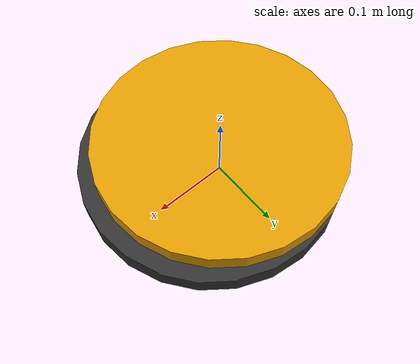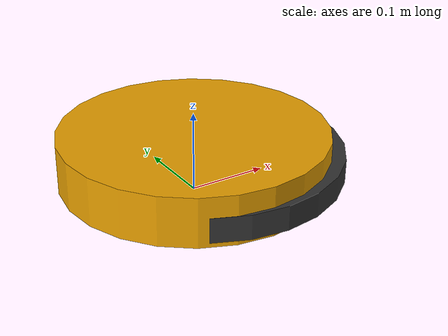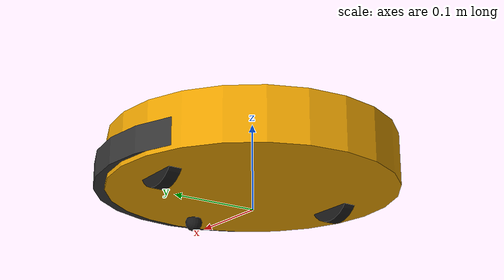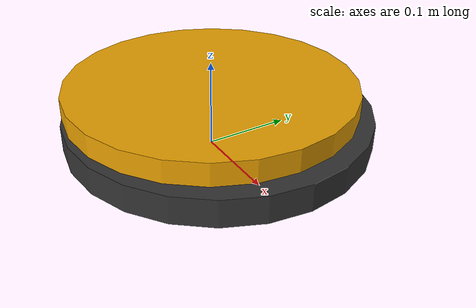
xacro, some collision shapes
<?xml version="1.0" ?>
<robot name="create3" xmlns:xacro="http://ros.org/wiki/xacro">
  <xacro:include filename="$(find nav2_minimal_tb4_description)/urdf/icreate/bumper.urdf.xacro" />
  <xacro:include filename="$(find fleet_orchestrator)/urdf/tb4/icreate/caster.urdf.xacro" />
  <xacro:include filename="$(find fleet_orchestrator)/urdf/tb4/icreate/common_properties.urdf.xacro"/>
  <xacro:include filename="$(find fleet_orchestrator)/urdf/tb4/icreate/sensors/imu.urdf.xacro" />
  <xacro:include filename="$(find nav2_minimal_tb4_description)/urdf/icreate/wheel.urdf.xacro" />

  <!-- Gazebo version -->
  <xacro:arg name="gazebo"                       default="ignition" />

  <!-- Namespace -->
  <xacro:arg name="namespace"                    default=""/>

  <!-- Prefixo de tópico gz-transport por robô (fork) -->
  <xacro:property name="tb_ns"     value="$(arg namespace)"/>
  <xacro:property name="tb_prefix" value="${'/' + tb_ns if tb_ns else ''}"/>

  <!-- Mechanical properties -->
  <xacro:property name="body_z_offset"           value="${-2.5*cm2m}" />
  <xacro:property name="body_collision_z_offset" value="${1*cm2m}" />
  <xacro:property name="body_mass"               value="2.300" />
  <xacro:property name="body_radius"             value="${16.4*cm2m}" />
  <xacro:property name="body_length"             value="${6*cm2m}" />

  <xacro:property name="body_cog_x_offset"       value="${2.28*cm2m}" />

  <xacro:property name="bumper_mass"             value="0.1" />
  <xacro:property name="bumper_offset_z"         value="${-2.5*cm2m}" />
  <xacro:property name="bumper_inertial_x"       value="${8*cm2m}" />
  <xacro:property name="bumper_inertial_z"       value="${2*cm2m}"/>

  <xacro:property name="wheel_height"            value="${-2.75*cm2m}" />
  <xacro:property name="distance_between_wheels" value="${23.3*cm2m}" />

  <xacro:property name="caster_position_x"       value="${12.5*cm2m}" />
  <xacro:property name="caster_position_z"       value="${-5.03*cm2m}" />

  <xacro:property name="wheel_drop_offset_z"     value="${3.5*mm2m}"/>
  <xacro:property name="wheel_drop_z"            value="${wheel_height + wheel_drop_offset_z}"/>

  <xacro:property name="base_link_z_offset"     value="${6.42*cm2m}"/>

  <!-- Create 3 base definition-->
  <link name="base_link">
    <visual>
      <origin xyz="0 0 ${body_z_offset + base_link_z_offset}" rpy="0 0 ${pi/2}"/>
      <geometry>
        <mesh filename="package://nav2_minimal_tb4_description/meshes/body_visual.dae" />
      </geometry>
    </visual>
    <collision name="create3_base_collision">
      <origin xyz="0 0 ${body_z_offset + body_collision_z_offset  + base_link_z_offset}" rpy="0 0 ${pi/2}"/>
      <geometry>
        <cylinder length="${body_length}" radius="${body_radius}"/>
      </geometry>
    </collision>
    <xacro:inertial_cylinder_with_pose mass="${body_mass}" radius="${body_radius}" length="${body_length}">
      <origin xyz="${body_cog_x_offset} 0 ${body_collision_z_offset + base_link_z_offset}"/>
    </xacro:inertial_cylinder_with_pose>
  </link>

  <gazebo reference="base_link">
    <xacro:material_darkgray/>
  </gazebo>

  <!-- Bumper -->
  <xacro:bumper
      gazebo="$(arg gazebo)"
      namespace="$(arg namespace)"
      visual_mesh="package://nav2_minimal_tb4_description/meshes/bumper_visual.dae"
      collision_mesh="package://nav2_minimal_tb4_description/meshes/bumper_collision.dae">
    <origin xyz="0 0 ${bumper_offset_z  + base_link_z_offset}"/>
    <inertial>
      <origin xyz="${bumper_inertial_x} 0 ${bumper_inertial_z}"/>
      <mass value="${bumper_mass}"/>
      <inertia ixx="0.0013483753405" ixy="0.0000000454352" ixz="0.0000014434849"
               iyy="0.0002521736852" iyz="-0.0000000006721" izz="0.0015442525386"/>
    </inertial>
  </xacro:bumper>

  <!-- Wheels with mechanical wheel drop -->
  <xacro:wheel name="left" gazebo="$(arg gazebo)">
    <origin xyz="0 ${distance_between_wheels/2} ${wheel_drop_z  + base_link_z_offset}" rpy="${-pi/2} 0 0"/>
  </xacro:wheel>

  <xacro:wheel name="right" gazebo="$(arg gazebo)">
    <origin xyz="0 ${-distance_between_wheels/2} ${wheel_drop_z  + base_link_z_offset}" rpy="${-pi/2} 0 0"/>
  </xacro:wheel>

  <!-- Caster wheel -->
  <xacro:caster name="front_caster" parent_link="base_link">
    <origin xyz="${caster_position_x} 0 ${caster_position_z  + base_link_z_offset}" rpy="${-pi/2} 0 0"/>
  </xacro:caster>

  <!-- IMU -->
  <xacro:imu_sensor gazebo="$(arg gazebo)" namespace="$(arg namespace)">
    <origin xyz="0.050613 0.043673 ${0.0202 + base_link_z_offset}"/>
  </xacro:imu_sensor>

  <gazebo>
      <plugin
        filename="gz-sim-diff-drive-system"
        name="gz::sim::systems::DiffDrive">
        <left_joint>left_wheel_joint</left_joint>
        <right_joint>right_wheel_joint</right_joint>
        <wheel_separation>0.233</wheel_separation>
        <wheel_radius>0.03575</wheel_radius>
        <max_linear_acceleration>2</max_linear_acceleration>
        <min_linear_acceleration>-2</min_linear_acceleration>
        <max_angular_acceleration>3</max_angular_acceleration>
        <min_angular_acceleration>-3</min_angular_acceleration>
        <max_linear_velocity>0.5</max_linear_velocity>
        <min_linear_velocity>-0.5</min_linear_velocity>
        <max_angular_velocity>2.0</max_angular_velocity>
        <min_angular_velocity>-2.0</min_angular_velocity>
        <topic>${tb_prefix}/cmd_vel</topic>
        <odom_topic>${tb_prefix}/odom</odom_topic>
        <tf_topic>${tb_prefix}/tf</tf_topic>
        <frame_id>odom</frame_id>
        <child_frame_id>base_link</child_frame_id>
        <odom_publish_frequency>30</odom_publish_frequency>
      </plugin>

      <plugin
        filename="gz-sim-joint-state-publisher-system"
        name="gz::sim::systems::JointStatePublisher">
        <joint_name>left_wheel_joint</joint_name>
        <joint_name>right_wheel_joint</joint_name>
        <topic>${tb_prefix}/joint_states</topic>
        <update_rate>30</update_rate>
      </plugin>
  </gazebo>

</robot>

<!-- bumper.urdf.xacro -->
<robot xmlns:xacro="http://ros.org/wiki/xacro">

<!-- The robot has a bumper with 5 contact sensors. The center one is
functional, while the 4 remaining ones are created as dummy links. -->
<xacro:macro name="dummy_bumper_zone" params="name parent_link:=base_link *origin">
  <xacro:property name="link_name" value="${name}"/>
  <xacro:property name="joint_name" value="${name}_joint"/>

  <joint name="${joint_name}" type="fixed">
    <parent link="${parent_link}"/>
    <child link="${link_name}"/>
    <xacro:insert_block name="origin"/>
  </joint>
  <link name="${link_name}"/>
</xacro:macro>

<xacro:macro name="bumper" params="name:=bumper namespace parent_link:=base_link update_rate:=62.0 gazebo visual_mesh collision_mesh
  *origin *inertial">
  <xacro:property name="link_name" value="${name}"/>
  <xacro:property name="joint_name" value="${name}_joint"/>

  <joint name="${joint_name}" type="fixed">
    <parent link="${parent_link}"/>
    <child link="${link_name}"/>
    <xacro:insert_block name="origin"/>
  </joint>
  <link name="${link_name}">
    <visual>
      <origin xyz="0.015 0 0" rpy="0 0 0"/>
      <geometry>
        <cylinder radius="0.17" length="0.03"/>
      </geometry>
      <material name="darkgrey">
        <color rgba="0.2 0.2 0.2 1"/>
      </material>
    </visual>
    <collision>
      <origin xyz="0.015 0 0" rpy="0 0 0"/>
      <geometry>
        <cylinder radius="0.164" length="0.03"/>
      </geometry>
    </collision>
    <xacro:insert_block name="inertial"/>
  </link>

  <gazebo reference="${link_name}">
    <material>Gazebo/DarkGrey</material>
  </gazebo>

  <xacro:dummy_bumper_zone
      name="bump_front_center">
      <origin xyz="0.175 0 0.039" rpy="0 0 0"/>
  </xacro:dummy_bumper_zone>

  <xacro:dummy_bumper_zone
      name="bump_front_left">
      <origin xyz="0.02345 -0.0875 0.025" rpy="0 0 0.5235985"/>
  </xacro:dummy_bumper_zone>

  <xacro:dummy_bumper_zone
      name="bump_front_right">
      <origin xyz="0.02345 0.0875 0.025" rpy="0 0 -0.5235985"/>
  </xacro:dummy_bumper_zone>

  <xacro:dummy_bumper_zone
      name="bump_left">
      <origin xyz="0.0875 -0.15155 0.025" rpy="0 0 1.047193"/>
  </xacro:dummy_bumper_zone>

  <xacro:dummy_bumper_zone
      name="bump_right">
      <origin xyz="0.0875 0.15155 0.025" rpy="0 0 -1.047193"/>
  </xacro:dummy_bumper_zone>

</xacro:macro>

</robot>

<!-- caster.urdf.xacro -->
<robot xmlns:xacro="http://ros.org/wiki/xacro">

<xacro:macro name="caster" params="name parent_link *origin">
  <xacro:include filename="$(find fleet_orchestrator)/urdf/tb4/icreate/common_properties.urdf.xacro"/>

  <xacro:property name="radius" value="${1*cm2m}" />
  <xacro:property name="mass"   value="0.01"/>

  <joint name="${name}_joint" type="fixed">
    <parent link="${parent_link}"/>
    <child link="${name}_link"/>
    <xacro:insert_block name="origin"/>
  </joint>
  <link name="${name}_link">
    <visual>
      <geometry>
        <sphere radius="${radius}"/>
      </geometry>
      <!-- Give black color to caster in Rviz -->
      <xacro:insert_block name="material_black"/>
    </visual>
    <collision>
      <geometry>
        <sphere radius="${radius}"/>
      </geometry>
    </collision>
    <xacro:inertial_sphere mass="${mass}" radius="${radius}"/>
  </link>

  <gazebo reference="${name}_joint">
    <preserveFixedJoint>true</preserveFixedJoint>
  </gazebo>

  <gazebo reference="${name}_link">
    <material>Gazebo/DarkGrey</material>
    <mu1>0.1</mu1>
    <mu2>0.1</mu2>
    <kp>1000000.0</kp>
    <kd>1.0</kd>
  </gazebo>

</xacro:macro>
</robot>

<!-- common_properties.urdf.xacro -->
<!-- Various useful macros -->
<robot name="xacro_properties" xmlns:xacro="http://ros.org/wiki/xacro">

  <xacro:macro name="inertial_cuboid_with_pose" params="mass x y z *origin">
    <inertial>
      <mass value="${mass}" />
      <xacro:insert_block name="origin"/>
      <inertia ixx="${(1/12) * mass * (y*y + z*z)}" ixy="0.0" ixz="0.0"
        iyy="${(1/12) * mass * (x*x + z*z)}" iyz="0.0"
        izz="${(1/12) * mass * (x*x + y*y)}" />
    </inertial>
  </xacro:macro>

  <xacro:macro name="inertial_cuboid" params="mass x y z">
    <xacro:inertial_cuboid_with_pose mass="${mass}" x="${x}" y="${y}" z="${z}">
      <origin xyz="0 0 0" />
    </xacro:inertial_cuboid_with_pose>
  </xacro:macro>

  <xacro:macro name="inertial_cylinder_with_pose" params="mass radius length *origin">
    <inertial>
      <xacro:insert_block name="origin"/>
      <mass value="${mass}" />
      <inertia ixx="${(1/12) * mass * (3*radius*radius + length*length)}" ixy="0.0" ixz="0.0"
        iyy="${(1/12) * mass * (3*radius*radius + length*length)}" iyz="0.0"
        izz="${(1/2) * mass * (radius*radius)}" />
    </inertial>
  </xacro:macro>

  <xacro:macro name="inertial_cylinder" params="mass radius length">
    <xacro:inertial_cylinder_with_pose mass="${mass}" radius="${radius}" length="${length}">
      <origin xyz="0 0 0" />
    </xacro:inertial_cylinder_with_pose>
  </xacro:macro>

  <xacro:macro name="inertial_sphere" params="mass radius">
    <inertial>
      <mass value="${mass}" />
      <inertia ixx="${(2/5) * mass * radius * radius}" ixy="0.0" ixz="0.0"
	             iyy="${(2/5) * mass * radius * radius}" iyz="0.0"
	             izz="${(2/5) * mass * radius * radius}" />
    </inertial>
  </xacro:macro>

  <xacro:macro name="inertial_dummy">
    <xacro:inertial_cuboid mass="0.01" x="0.01" y="0.01" z="0.01"/>
  </xacro:macro>

  <xacro:macro name="ray_sensor"
    params="sensor_name gazebo update_rate visualize
            h_samples h_res h_min_angle h_max_angle
            r_min r_max r_res ns:='' *plugin">
    <xacro:property name="ray_prefix" value="${'/' + ns if ns else ''}"/>
    <sensor name="${sensor_name}" type="gpu_lidar">
      <update_rate>${update_rate}</update_rate>
      <visualize>${visualize}</visualize>
      <always_on>true</always_on>
      <gz_frame_id>${sensor_name}_link</gz_frame_id>
      <topic>${ray_prefix}/scan</topic>
      <lidar>
        <scan>
          <horizontal>
            <samples>${h_samples}</samples>
            <resolution>${h_res}</resolution>
            <min_angle>${h_min_angle}</min_angle>
            <max_angle>${h_max_angle}</max_angle>
          </horizontal>
        </scan>
        <range>
          <min>${r_min}</min>
          <max>${r_max}</max>
          <resolution>${r_res}</resolution>
        </range>
      </lidar>
    </sensor>
  </xacro:macro>

  <!-- Conversion macros -->
  <xacro:property name="cm2m"    value="${1/100.0}"/>
  <xacro:property name="mm2m"    value="${1/1000.0}"/>
  <xacro:property name="in2m"    value="0.0254"/>
  <xacro:property name="deg2rad" value="${pi/180.0}"/>

  <!-- Material colors -->
  <xacro:property name="material_black">
    <material name="black">
      <color rgba="0.1 0.1 0.1 1"/>
    </material>
  </xacro:property>

  <!-- Material macros -->
  <xacro:macro name="material_black">
    <visual>
      <material>
        <diffuse>0 0 0 1</diffuse>
        <specular>${80/255} ${80/255} ${80/255} 1</specular>
        <emissive>0 0 0 1</emissive>
      </material>
    </visual>
  </xacro:macro>

  <xacro:macro name="material_darkgray">
    <visual>
      <material>
        <diffuse>${3/255} ${3/255} ${3/255} 1</diffuse>
        <specular>0 0 0 1</specular>
        <emissive>0 0 0 1</emissive>
      </material>
    </visual>
  </xacro:macro>

</robot>

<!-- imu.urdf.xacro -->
<robot xmlns:xacro="http://ros.org/wiki/xacro">

<xacro:macro name="imu_sensor" params="name:=imu gazebo namespace parent:=base_link update_rate:=200 *origin">

  <xacro:property name="imu_prefix" value="${'/' + namespace if namespace else ''}"/>

  <joint name="${name}_joint" type="fixed">
    <xacro:insert_block name="origin"/>
    <parent link="${parent}"/>
    <child link="${name}_link"/>
  </joint>

  <link name="${name}_link">
      <xacro:inertial_dummy />
  </link>

  <gazebo reference="${name}_link">
    <sensor type="imu" name="${name}">
      <always_on>true</always_on>
      <update_rate>${update_rate}</update_rate>
      <topic>${imu_prefix}/imu</topic>
      <imu>
        <angular_velocity>
          <x>
            <noise type="gaussian">
              <mean>0.0</mean>
              <stddev>0.0</stddev>
            </noise>
          </x>
          <y>
            <noise type="gaussian">
              <mean>0.0</mean>
              <stddev>0.0</stddev>
            </noise>
          </y>
          <z>
            <noise type="gaussian">
              <mean>0.0</mean>
              <stddev>0.0</stddev>
            </noise>
          </z>
        </angular_velocity>
        <linear_acceleration>
          <x>
            <noise type="gaussian">
              <mean>0.0</mean>
              <stddev>0.0</stddev>
            </noise>
          </x>
          <y>
            <noise type="gaussian">
              <mean>0.0</mean>
              <stddev>0.0</stddev>
            </noise>
          </y>
          <z>
            <noise type="gaussian">
              <mean>0.0</mean>
              <stddev>0.0</stddev>
            </noise>
          </z>
        </linear_acceleration>
      </imu>
    </sensor>
  </gazebo>

  <gazebo reference="${name}_joint">
    <preserveFixedJoint>true</preserveFixedJoint>
  </gazebo>

</xacro:macro>
</robot>

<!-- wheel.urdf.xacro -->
<robot xmlns:xacro="http://ros.org/wiki/xacro">

<xacro:macro name="wheel" params="name gazebo parent_link:=base_link *origin">

  <xacro:property name="mass"   value="0.2" />
  <xacro:property name="radius" value="${3.575*cm2m}" />
  <xacro:property name="width"  value="${1.5*cm2m}" />

  <xacro:property name="wheel_link_name"  value="${name}_wheel"/>
  <xacro:property name="wheel_joint_name" value="${wheel_link_name}_joint"/>

  <joint name="${wheel_joint_name}" type="continuous">
    <parent link="${parent_link}"/>
    <child link="${wheel_link_name}"/>
    <xacro:insert_block name="origin"/>
    <axis xyz="0 0 1"/>
  </joint>

  <link name="${wheel_link_name}">
    <visual>
      <geometry>
        <cylinder length="${width}" radius="${radius}"/>
      </geometry>
      <!-- Give black color to wheels in Rviz -->
      <xacro:insert_block name="material_black"/>
    </visual>
    <collision>
      <geometry>
        <cylinder length="${width}" radius="${radius}"/>
      </geometry>
    </collision>
    <xacro:inertial_cylinder mass="${mass}" radius="${radius}"
      length="${width}" />
  </link>

  <gazebo reference="${wheel_link_name}">
    <mu1>0.9</mu1>
    <mu2>0.9</mu2>
    <slip1>0.1</slip1>
    <slip2>0.1</slip2>
    <kp>200000.0</kp>
    <kd>20.0</kd>
    <minDepth>0.001</minDepth>
    <maxVel>1.0</maxVel>
    <material>Gazebo/DarkGrey</material>
  </gazebo>

</xacro:macro>
</robot>
